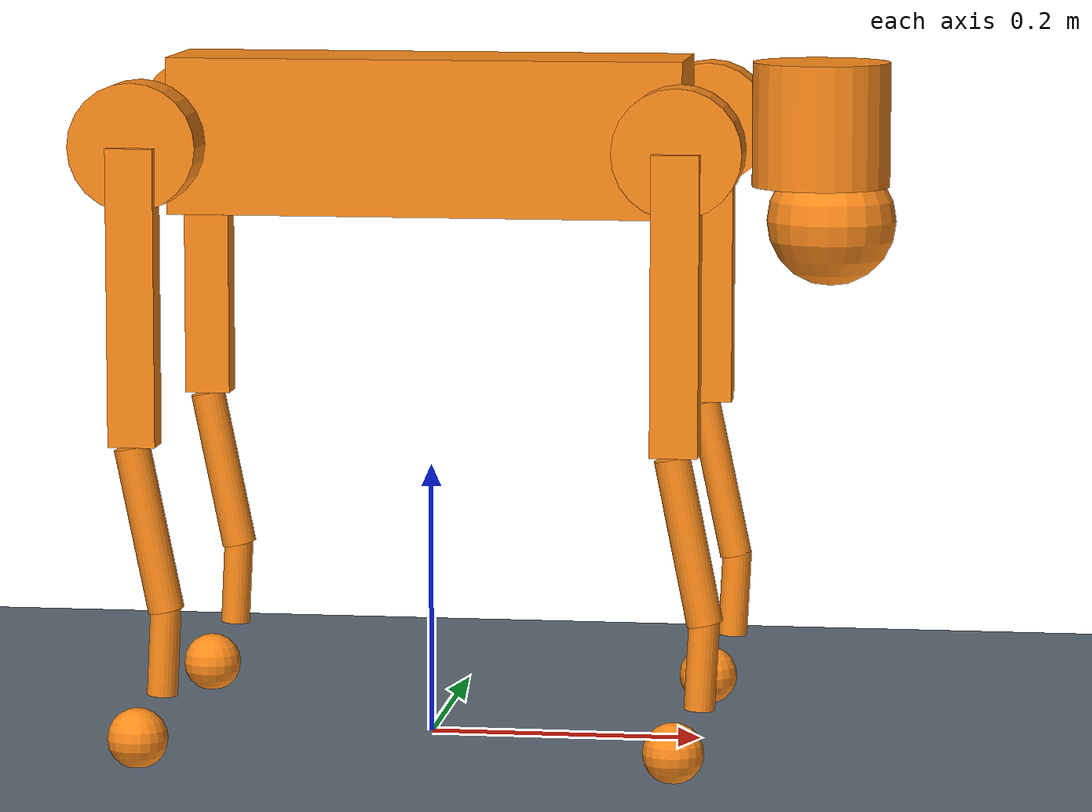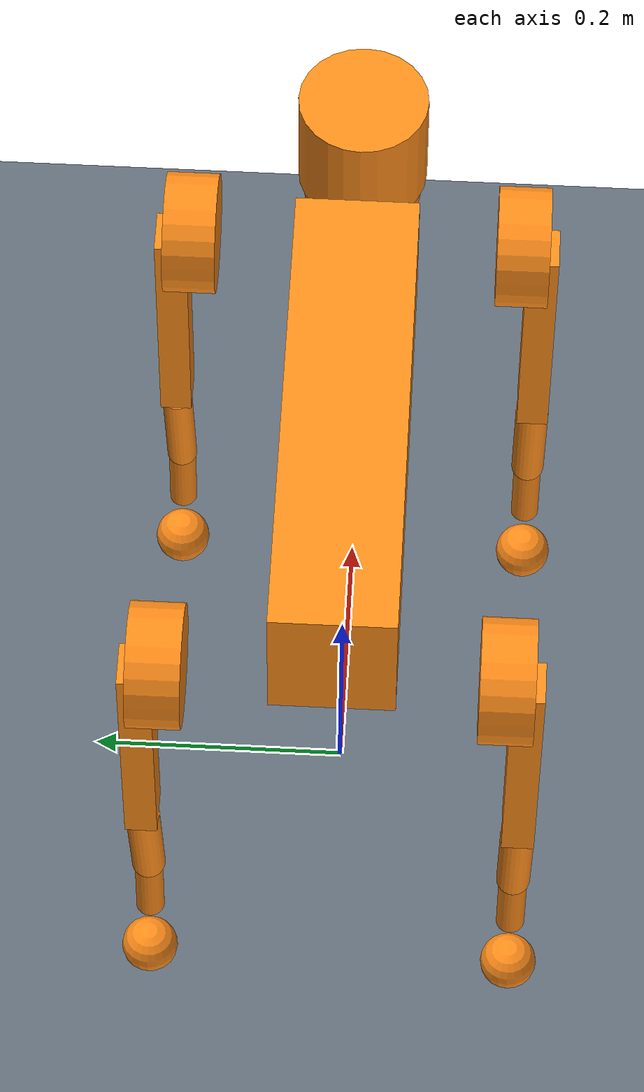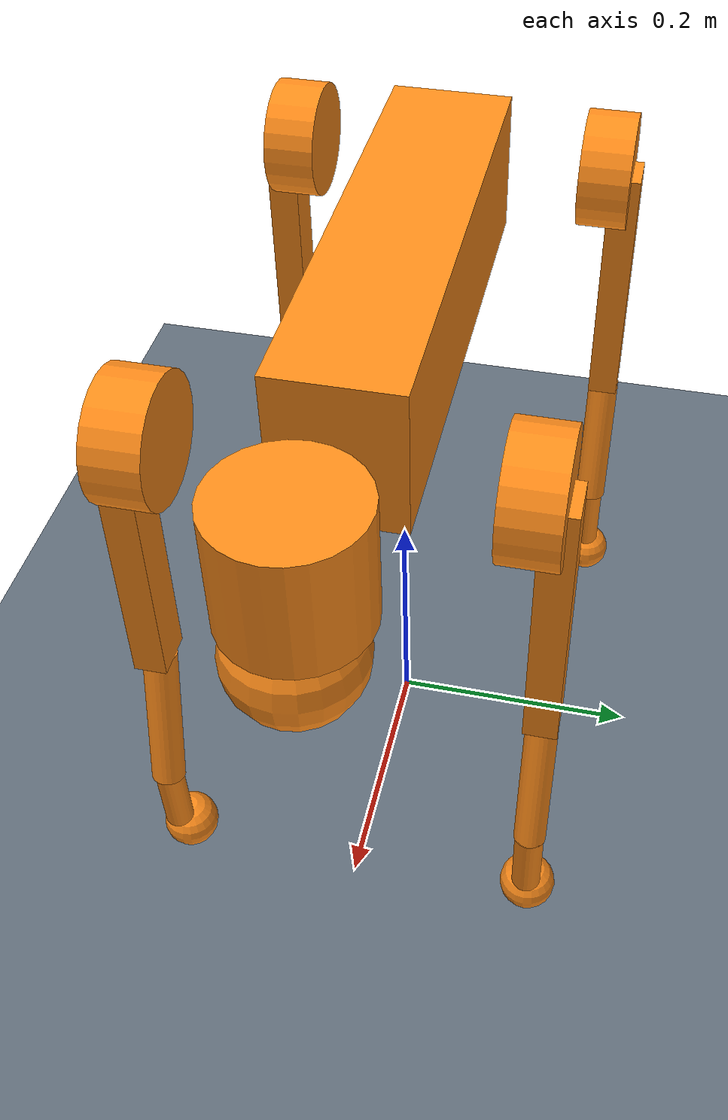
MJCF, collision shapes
<mujoco model="unitree_go2_scene">
  <include file="../model/robot.xml"/>
  <compiler meshdir="../model/assets"/>

  <visual>
    <headlight diffuse="0.82 0.86 0.9" ambient="0.42 0.48 0.54" specular="0.15 0.15 0.18"/>
    <global azimuth="120" elevation="-20"/>
  </visual>

  <asset>
    <texture type="skybox" builtin="gradient" rgb1="0.7 0.8 0.9" rgb2="0.4 0.5 0.6" width="256" height="256"/>
    <texture type="2d" name="groundplane" builtin="checker" mark="edge" rgb1="0.35 0.4 0.45" rgb2="0.4 0.45 0.5" markrgb="0.8 0.8 0.8" width="300" height="300"/>
    <material name="groundplane" texture="groundplane" texrepeat="5 5"/>
  </asset>

  <worldbody>
    <light pos="0 0 2.5" dir="0 0 -1" directional="true"/>
    <geom name="floor" type="plane" size="0 0 0.05" material="groundplane"/>
  </worldbody>
</mujoco>

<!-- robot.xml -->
<mujoco model="go2">
  <compiler angle="radian" meshdir="assets" autolimits="true"/>
  <!-- timestep 不在此声明：运行时统一取 contract_v3.json control.physics_hz -->
  <option cone="elliptic" impratio="100" gravity="0 0 -9.81" integrator="implicitfast" />

  <default>
    <default class="go2">
      <geom friction="0.6" margin="0.001" condim="1"/>
      <joint axis="0 1 0" damping="0.5" armature="0.01" frictionloss="0.2"/>
      <position forcerange="-23.7 23.7" kp="35"/>
      <default class="abduction">
        <joint axis="1 0 0" range="-1.0472 1.0472"/>
      </default>
      <default class="hip">
        <default class="front_hip">
          <joint range="-1.5708 3.4907"/>
        </default>
        <default class="back_hip">
          <joint range="-0.5236 4.5379"/>
        </default>
      </default>
      <default class="knee">
        <joint range="-2.7227 -0.83776"/>
        <position forcerange="-45.43 45.43"/>
      </default>
      <default class="visual">
        <geom type="mesh" contype="0" conaffinity="0" group="2"/>
      </default>
      <default class="collision">
        <geom group="3"  contype="1" conaffinity="2" rgba="1 0.55 0.1 0.6"/>
        <default class="foot">
          <geom size="0.022" pos="-0.002 0 -0.213" priority="1" condim="6"
            friction="0.4 0.02 0.01"/>
        </default>
      </default>
    </default>
  </default>

  <asset>
    <material name="metal" rgba=".9 .95 .95 1"/>
    <material name="black" rgba="0 0 0 1"/>
    <material name="white" rgba="1 1 1 1"/>
    <material name="gray" rgba="0.671705 0.692426 0.774270 1"/>

    <mesh file="base_0.obj"/>
    <mesh file="base_1.obj"/>
    <mesh file="base_2.obj"/>
    <mesh file="base_3.obj"/>
    <mesh file="base_4.obj"/>
    <mesh file="hip_0.obj"/>
    <mesh file="hip_1.obj"/>
    <mesh file="thigh_0.obj"/>
    <mesh file="thigh_1.obj"/>
    <mesh file="thigh_mirror_0.obj"/>
    <mesh file="thigh_mirror_1.obj"/>
    <mesh file="calf_0.obj"/>
    <mesh file="calf_1.obj"/>
    <mesh file="calf_mirror_0.obj"/>
    <mesh file="calf_mirror_1.obj"/>
    <mesh file="foot.obj"/>
  </asset>

  <worldbody>
    <body name="base" pos="0 0 0.445" childclass="go2">
      <inertial pos="0.021112 0 -0.005366" quat="-0.000543471 0.713435 -0.00173769 0.700719" mass="6.921"
        diaginertia="0.107027 0.0980771 0.0244531"/>
      <freejoint/>
      <geom mesh="base_0" material="black" class="visual"/>
      <geom mesh="base_1" material="black" class="visual"/>
      <geom mesh="base_2" material="black" class="visual"/>
      <geom mesh="base_3" material="white" class="visual"/>
      <geom mesh="base_4" material="gray" class="visual"/>
      <geom name="base1" size="0.1881 0.04675 0.057" type="box" class="collision"/>
      <geom name="base2" size="0.05 0.045" pos="0.285 0 0.01" type="cylinder" class="collision"/>
      <geom name="base3" size="0.047" pos="0.293 0 -0.06" class="collision"/>
      <site name="imu" pos="-0.02557 0 0.04232"/>
      <body name="FL_hip" pos="0.1934 0.0465 0">
        <inertial pos="-0.0054 0.00194 -0.000105" quat="0.497014 0.499245 0.505462 0.498237" mass="0.678"
          diaginertia="0.00088403 0.000596003 0.000479967"/>
        <joint name="FL_hip_joint" class="abduction" armature="0.01" frictionloss="0.2"/>
        <geom mesh="hip_0" material="metal" class="visual"/>
        <geom mesh="hip_1" material="gray" class="visual"/>
        <geom name="FL_hip_geom" size="0.046 0.02" pos="0 0.08 0" quat="1 1 0 0" type="cylinder" class="collision"/>
        <body name="FL_thigh" pos="0 0.0955 0">
          <inertial pos="-0.00374 -0.0223 -0.0327" quat="0.829533 0.0847635 -0.0200632 0.551623" mass="1.152"
            diaginertia="0.00594973 0.00584149 0.000878787"/>
          <joint name="FL_thigh_joint" class="front_hip" armature="0.01" frictionloss="0.2"/>
          <geom mesh="thigh_0" material="metal" class="visual"/>
          <geom mesh="thigh_1" material="gray" class="visual"/>
          <geom name="FL_thigh_geom" size="0.1065 0.01225 0.017" pos="0 0 -0.1065" quat="0.707107 0 0.707107 0" type="box" class="collision"/>
          <body name="FL_calf" pos="0 0 -0.213">
            <inertial pos="0.00629595 -0.000622121 -0.141417" quat="0.710672 0.00154099 -0.00450087 0.703508"
              mass="0.241352" diaginertia="0.0014901 0.00146356 5.31397e-05"/>
            <joint name="FL_calf_joint" class="knee" armature="0.02" frictionloss="0.2"/>
            <geom mesh="calf_0" material="gray" class="visual"/>
            <geom mesh="calf_1" material="black" class="visual"/>
            <geom name="FL_calf_geom1" size="0.012 0.06" pos="0.008 0 -0.06" quat="0.994493 0 -0.104807 0" type="cylinder" class="collision"/>
            <geom name="FL_calf_geom2" size="0.011 0.0325" pos="0.02 0 -0.148" quat="0.999688 0 0.0249974 0" type="cylinder" class="collision"/>
            <geom pos="0 0 -0.213" mesh="foot" class="visual" material="black"/>
            <geom name="FL" class="foot" type="sphere" size="0.022" pos="0 0 -0.213" group="3" contype="1" conaffinity="2" priority="1" condim="6" friction="0.4 0.02 0.01" rgba="1 0.55 0.1 0.6"/>
          </body>
        </body>
      </body>
      <body name="FR_hip" pos="0.1934 -0.0465 0">
        <inertial pos="-0.0054 -0.00194 -0.000105" quat="0.498237 0.505462 0.499245 0.497014" mass="0.678"
          diaginertia="0.00088403 0.000596003 0.000479967"/>
        <joint name="FR_hip_joint" class="abduction" armature="0.01" frictionloss="0.2"/>
        <geom mesh="hip_0" material="metal" class="visual" quat="4.63268e-05 1 0 0"/>
        <geom mesh="hip_1" material="gray" class="visual" quat="4.63268e-05 1 0 0"/>
        <geom name="FR_hip_geom" size="0.046 0.02" pos="0 -0.08 0" quat="0.707107 0.707107 0 0" type="cylinder" class="collision"/>
        <body name="FR_thigh" pos="0 -0.0955 0">
          <inertial pos="-0.00374 0.0223 -0.0327" quat="0.551623 -0.0200632 0.0847635 0.829533" mass="1.152"
            diaginertia="0.00594973 0.00584149 0.000878787"/>
          <joint name="FR_thigh_joint" class="front_hip" armature="0.01" frictionloss="0.2"/>
          <geom mesh="thigh_mirror_0" material="metal" class="visual"/>
          <geom mesh="thigh_mirror_1" material="gray" class="visual"/>
          <geom name="FR_thigh_geom" size="0.1065 0.01225 0.017" pos="0 0 -0.1065" quat="0.707107 0 0.707107 0" type="box" class="collision"/>
          <body name="FR_calf" pos="0 0 -0.213">
            <inertial pos="0.00629595 0.000622121 -0.141417" quat="0.703508 -0.00450087 0.00154099 0.710672"
              mass="0.241352" diaginertia="0.0014901 0.00146356 5.31397e-05"/>
            <joint name="FR_calf_joint" class="knee" armature="0.02" frictionloss="0.2"/>
            <geom mesh="calf_mirror_0" material="gray" class="visual"/>
            <geom mesh="calf_mirror_1" material="black" class="visual"/>
            <geom name="FR_calf_geom1" size="0.013 0.06" pos="0.01 0 -0.06" quat="0.995004 0 -0.0998334 0" type="cylinder" class="collision"/>
            <geom name="FR_calf_geom2" size="0.011 0.0325" pos="0.02 0 -0.148" quat="0.999688 0 0.0249974 0" type="cylinder" class="collision"/>
            <geom pos="0 0 -0.213" mesh="foot" class="visual" material="black"/>
            <geom name="FR" class="foot" type="sphere" size="0.022" pos="0 0 -0.213" group="3" contype="1" conaffinity="2" priority="1" condim="6" friction="0.4 0.02 0.01" rgba="1 0.55 0.1 0.6"/>
          </body>
        </body>
      </body>
      <body name="RL_hip" pos="-0.1934 0.0465 0">
        <inertial pos="0.0054 0.00194 -0.000105" quat="0.505462 0.498237 0.497014 0.499245" mass="0.678"
          diaginertia="0.00088403 0.000596003 0.000479967"/>
        <joint name="RL_hip_joint" class="abduction" armature="0.01" frictionloss="0.2"/>
        <geom mesh="hip_0" material="metal" class="visual" quat="4.63268e-05 0 1 0"/>
        <geom mesh="hip_1" material="gray" class="visual" quat="4.63268e-05 0 1 0"/>
        <geom name="RL_hip_geom" size="0.046 0.02" pos="0 0.08 0" quat="0.707107 0.707107 0 0" type="cylinder" class="collision"/>
        <body name="RL_thigh" pos="0 0.0955 0">
          <inertial pos="-0.00374 -0.0223 -0.0327" quat="0.829533 0.0847635 -0.0200632 0.551623" mass="1.152"
            diaginertia="0.00594973 0.00584149 0.000878787"/>
          <joint name="RL_thigh_joint" class="back_hip" armature="0.01" frictionloss="0.2"/>
          <geom mesh="thigh_0" material="metal" class="visual"/>
          <geom mesh="thigh_1" material="gray" class="visual"/>
          <geom name="RL_thigh_geom" size="0.1065 0.01225 0.017" pos="0 0 -0.1065" quat="0.707107 0 0.707107 0" type="box" class="collision"/>
          <body name="RL_calf" pos="0 0 -0.213">
            <inertial pos="0.00629595 -0.000622121 -0.141417" quat="0.710672 0.00154099 -0.00450087 0.703508"
              mass="0.241352" diaginertia="0.0014901 0.00146356 5.31397e-05"/>
            <joint name="RL_calf_joint" class="knee" armature="0.02" frictionloss="0.2"/>
            <geom mesh="calf_0" material="gray" class="visual"/>
            <geom mesh="calf_1" material="black" class="visual"/>
            <geom name="RL_calf_geom1" size="0.013 0.06" pos="0.01 0 -0.06" quat="0.995004 0 -0.0998334 0" type="cylinder" class="collision"/>
            <geom name="RL_calf_geom2" size="0.011 0.0325" pos="0.02 0 -0.148" quat="0.999688 0 0.0249974 0" type="cylinder" class="collision"/>
            <geom pos="0 0 -0.213" mesh="foot" class="visual" material="black"/>
            <geom name="RL" class="foot" type="sphere" size="0.022" pos="0 0 -0.213" group="3" contype="1" conaffinity="2" priority="1" condim="6" friction="0.4 0.02 0.01" rgba="1 0.55 0.1 0.6"/>
          </body>
        </body>
      </body>
      <body name="RR_hip" pos="-0.1934 -0.0465 0">
        <inertial pos="0.0054 -0.00194 -0.000105" quat="0.499245 0.497014 0.498237 0.505462" mass="0.678"
          diaginertia="0.00088403 0.000596003 0.000479967"/>
        <joint name="RR_hip_joint" class="abduction" armature="0.01" frictionloss="0.2"/>
        <geom mesh="hip_0" material="metal" class="visual" quat="2.14617e-09 4.63268e-05 4.63268e-05 -1"/>
        <geom mesh="hip_1" material="gray" class="visual" quat="2.14617e-09 4.63268e-05 4.63268e-05 -1"/>
        <geom name="RR_hip_geom" size="0.046 0.02" pos="0 -0.08 0" quat="0.707107 0.707107 0 0" type="cylinder" class="collision"/>
        <body name="RR_thigh" pos="0 -0.0955 0">
          <inertial pos="-0.00374 0.0223 -0.0327" quat="0.551623 -0.0200632 0.0847635 0.829533" mass="1.152"
            diaginertia="0.00594973 0.00584149 0.000878787"/>
          <joint name="RR_thigh_joint" class="back_hip" armature="0.01" frictionloss="0.2"/>
          <geom mesh="thigh_mirror_0" material="metal" class="visual"/>
          <geom mesh="thigh_mirror_1" material="gray" class="visual"/>
          <geom name="RR_thigh_geom" size="0.1065 0.01225 0.017" pos="0 0 -0.1065" quat="0.707107 0 0.707107 0" type="box" class="collision"/>
          <body name="RR_calf" pos="0 0 -0.213">
            <inertial pos="0.00629595 0.000622121 -0.141417" quat="0.703508 -0.00450087 0.00154099 0.710672"
              mass="0.241352" diaginertia="0.0014901 0.00146356 5.31397e-05"/>
            <joint name="RR_calf_joint" class="knee" armature="0.02" frictionloss="0.2"/>
            <geom mesh="calf_mirror_0" material="gray" class="visual"/>
            <geom mesh="calf_mirror_1" material="black" class="visual"/>
            <geom name="RR_calf_geom1" size="0.013 0.06" pos="0.01 0 -0.06" quat="0.995004 0 -0.0998334 0" type="cylinder" class="collision"/>
            <geom name="RR_calf_geom2" size="0.011 0.0325" pos="0.02 0 -0.148" quat="0.999688 0 0.0249974 0" type="cylinder" class="collision"/>
            <geom pos="0 0 -0.213" mesh="foot" class="visual" material="black"/>
            <geom name="RR" class="foot" type="sphere" size="0.022" pos="0 0 -0.213" group="3" contype="1" conaffinity="2" priority="1" condim="6" friction="0.4 0.02 0.01" rgba="1 0.55 0.1 0.6"/>
          </body>
        </body>
      </body>
    </body>
  </worldbody>

  <actuator>
        <motor name="FR_hip" joint="FR_hip_joint" gear="1" forcerange="-23.7 23.7" forcelimited="true" />
        <motor name="FR_thigh" joint="FR_thigh_joint" gear="1" forcerange="-23.7 23.7" forcelimited="true" />
        <motor name="FR_calf" joint="FR_calf_joint" gear="1" forcerange="-35.55 35.55" forcelimited="true" />
        <motor name="FL_hip" joint="FL_hip_joint" gear="1" forcerange="-23.7 23.7" forcelimited="true" />
        <motor name="FL_thigh" joint="FL_thigh_joint" gear="1" forcerange="-23.7 23.7" forcelimited="true" />
        <motor name="FL_calf" joint="FL_calf_joint" gear="1" forcerange="-35.55 35.55" forcelimited="true" />
        <motor name="RR_hip" joint="RR_hip_joint" gear="1" forcerange="-23.7 23.7" forcelimited="true" />
        <motor name="RR_thigh" joint="RR_thigh_joint" gear="1" forcerange="-23.7 23.7" forcelimited="true" />
        <motor name="RR_calf" joint="RR_calf_joint" gear="1" forcerange="-35.55 35.55" forcelimited="true" />
        <motor name="RL_hip" joint="RL_hip_joint" gear="1" forcerange="-23.7 23.7" forcelimited="true" />
        <motor name="RL_thigh" joint="RL_thigh_joint" gear="1" forcerange="-23.7 23.7" forcelimited="true" />
        <motor name="RL_calf" joint="RL_calf_joint" gear="1" forcerange="-35.55 35.55" forcelimited="true" />
  </actuator>

  <sensor>

    <gyro site="imu" name="gyro"/>
    <accelerometer site="imu" name="accelerometer"/>
    <velocimeter site="imu" name="local_linvel"/>
    <framezaxis objtype="site" objname="imu" name="upvector"/>

    <framepos objtype="site" objname="imu" name="global_position"/>
    <framelinvel objtype="site" objname="imu" name="global_linvel"/>
    <frameangvel objtype="site" objname="imu" name="global_angvel"/>

    <framepos objtype="geom" objname="FR" name="FR_pos"/>
    <framepos objtype="geom" objname="FL" name="FL_pos"/>
    <framepos objtype="geom" objname="RR" name="RR_pos"/>
    <framepos objtype="geom" objname="RL" name="RL_pos"/>

    <framelinvel objtype="geom" objname="FR" name="FR_vel"/>
    <framelinvel objtype="geom" objname="FL" name="FL_vel"/>
    <framelinvel objtype="geom" objname="RR" name="RR_vel"/>
    <framelinvel objtype="geom" objname="RL" name="RL_vel"/>
  </sensor>

</mujoco>
